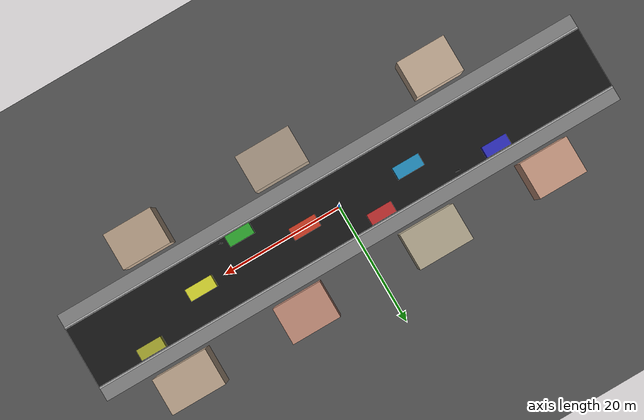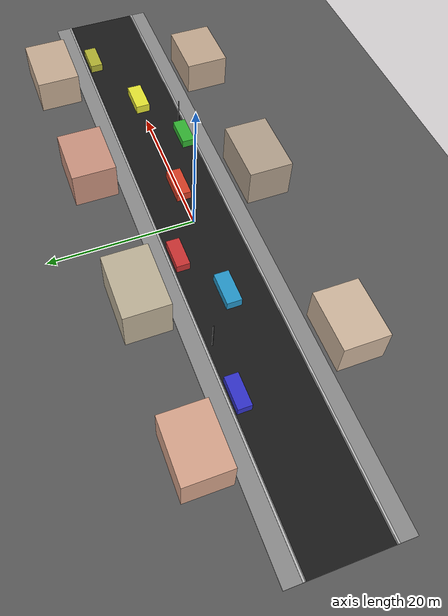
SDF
<?xml version="1.0" ?>
<sdf version="1.9">
  <world name="compact_city_world">
    <physics name="1ms" type="ignored">
      <max_step_size>0.001</max_step_size>
      <real_time_factor>1.0</real_time_factor>
    </physics>

    <plugin filename="gz-sim-physics-system" name="gz::sim::systems::Physics"></plugin>
    <plugin filename="gz-sim-user-commands-system" name="gz::sim::systems::UserCommands"></plugin>
    <plugin filename="gz-sim-scene-broadcaster-system" name="gz::sim::systems::SceneBroadcaster"></plugin>
    <plugin filename="gz-sim-contact-system" name="gz::sim::systems::Contact"></plugin>
    <plugin filename="gz-sim-sensors-system" name="gz::sim::systems::Sensors">
      <render_engine>ogre2</render_engine>
    </plugin>
    <plugin filename="gz-sim-imu-system" name="gz::sim::systems::Imu"></plugin>
    <plugin filename="gz-sim-navsat-system" name="gz::sim::systems::NavSat"></plugin>

    <spherical_coordinates>
      <surface_model>EARTH_WGS84</surface_model>
      <world_frame_orientation>ENU</world_frame_orientation>
      <latitude_deg>47.478950</latitude_deg>
      <longitude_deg>19.057785</longitude_deg>
      <elevation>0</elevation>
      <heading_deg>0</heading_deg>
    </spherical_coordinates>

    <gravity>0 0 -9.8000000000000007</gravity>
    <magnetic_field>5.5644999999999998e-06 2.2875799999999999e-05 -4.2388400000000002e-05</magnetic_field>
    <atmosphere type='adiabatic'/>

    <scene>
      <ambient>0.40 0.40 0.40 1</ambient>
      <background>0.70 0.70 0.70 1</background>
      <shadows>true</shadows>
    </scene>

    <light type="directional" name="sun">
      <cast_shadows>true</cast_shadows>
      <pose>0 0 10 0 0 0</pose>
      <diffuse>0.8 0.8 0.8 1</diffuse>
      <specular>0.2 0.2 0.2 1</specular>
      <attenuation>
        <range>1000</range>
        <constant>0.9</constant>
        <linear>0.01</linear>
        <quadratic>0.001</quadratic>
      </attenuation>
      <direction>-0.5 0.1 -0.9</direction>
    </light>

    <!-- Ground -->
    <model name="ground_plane">
      <static>true</static>
      <link name="ground_link">
        <collision name="collision">
          <geometry>
            <plane>
              <normal>0 0 1</normal>
              <size>120 60</size>
            </plane>
          </geometry>
        </collision>
        <visual name="visual">
          <geometry>
            <plane>
              <normal>0 0 1</normal>
              <size>120 60</size>
            </plane>
          </geometry>
          <material>
            <ambient>0.35 0.35 0.35 1</ambient>
            <diffuse>0.35 0.35 0.35 1</diffuse>
          </material>
        </visual>
      </link>
    </model>

    <!-- Road -->
    <model name="road_main">
      <static>true</static>
      <link name="road_link">
        <collision name="collision">
          <geometry>
            <box><size>90 10 0.05</size></box>
          </geometry>
          <pose>0 0 0.025 0 0 0</pose>
        </collision>
        <visual name="visual">
          <geometry>
            <box><size>90 10 0.05</size></box>
          </geometry>
          <pose>0 0 0.025 0 0 0</pose>
          <material>
            <ambient>0.08 0.08 0.08 1</ambient>
            <diffuse>0.10 0.10 0.10 1</diffuse>
          </material>
        </visual>
      </link>
    </model>

    <!-- Sidewalks -->
    <model name="sidewalk_north">
      <static>true</static>
      <link name="link">
        <collision name="collision"><geometry><box><size>90 2.5 0.12</size></box></geometry><pose>0 6.25 0.06 0 0 0</pose></collision>
        <visual name="visual"><geometry><box><size>90 2.5 0.12</size></box></geometry><pose>0 6.25 0.06 0 0 0</pose><material><ambient>0.55 0.55 0.55 1</ambient><diffuse>0.55 0.55 0.55 1</diffuse></material></visual>
      </link>
    </model>

    <model name="sidewalk_south">
      <static>true</static>
      <link name="link">
        <collision name="collision"><geometry><box><size>90 2.5 0.12</size></box></geometry><pose>0 -6.25 0.06 0 0 0</pose></collision>
        <visual name="visual"><geometry><box><size>90 2.5 0.12</size></box></geometry><pose>0 -6.25 0.06 0 0 0</pose><material><ambient>0.55 0.55 0.55 1</ambient><diffuse>0.55 0.55 0.55 1</diffuse></material></visual>
      </link>
    </model>

    <!-- Curbs -->
    <model name="curb_north">
      <static>true</static>
      <link name="link">
        <collision name="collision"><geometry><box><size>90 0.25 0.18</size></box></geometry><pose>0 5.25 0.09 0 0 0</pose></collision>
        <visual name="visual"><geometry><box><size>90 0.25 0.18</size></box></geometry><pose>0 5.25 0.09 0 0 0</pose><material><ambient>0.75 0.75 0.75 1</ambient><diffuse>0.75 0.75 0.75 1</diffuse></material></visual>
      </link>
    </model>

    <model name="curb_south">
      <static>true</static>
      <link name="link">
        <collision name="collision"><geometry><box><size>90 0.25 0.18</size></box></geometry><pose>0 -5.25 0.09 0 0 0</pose></collision>
        <visual name="visual"><geometry><box><size>90 0.25 0.18</size></box></geometry><pose>0 -5.25 0.09 0 0 0</pose><material><ambient>0.75 0.75 0.75 1</ambient><diffuse>0.75 0.75 0.75 1</diffuse></material></visual>
      </link>
    </model>

    <!-- Houses (simple boxes, low cost) -->
    <model name="house_1">
      <static>true</static>
      <pose>-30 11 0 0 0 0</pose>
      <link name="link">
        <collision name="collision"><geometry><box><size>8 6 5</size></box></geometry><pose>0 0 2.5 0 0 0</pose></collision>
        <visual name="visual"><geometry><box><size>8 6 5</size></box></geometry><pose>0 0 2.5 0 0 0</pose><material><ambient>0.85 0.65 0.55 1</ambient><diffuse>0.85 0.65 0.55 1</diffuse></material></visual>
      </link>
    </model>

    <model name="house_2">
      <static>true</static>
      <pose>-10 11 0 0 0 0</pose>
      <link name="link">
        <collision name="collision"><geometry><box><size>9 6 6</size></box></geometry><pose>0 0 3 0 0 0</pose></collision>
        <visual name="visual"><geometry><box><size>9 6 6</size></box></geometry><pose>0 0 3 0 0 0</pose><material><ambient>0.75 0.70 0.60 1</ambient><diffuse>0.75 0.70 0.60 1</diffuse></material></visual>
      </link>
    </model>

    <model name="house_3">
      <static>true</static>
      <pose>12 11 0 0 0 0</pose>
      <link name="link">
        <collision name="collision"><geometry><box><size>8 6 5.5</size></box></geometry><pose>0 0 2.75 0 0 0</pose></collision>
        <visual name="visual"><geometry><box><size>8 6 5.5</size></box></geometry><pose>0 0 2.75 0 0 0</pose><material><ambient>0.80 0.58 0.50 1</ambient><diffuse>0.80 0.58 0.50 1</diffuse></material></visual>
      </link>
    </model>

    <model name="house_4">
      <static>true</static>
      <pose>32 11 0 0 0 0</pose>
      <link name="link">
        <collision name="collision"><geometry><box><size>9 6 5</size></box></geometry><pose>0 0 2.5 0 0 0</pose></collision>
        <visual name="visual"><geometry><box><size>9 6 5</size></box></geometry><pose>0 0 2.5 0 0 0</pose><material><ambient>0.78 0.68 0.58 1</ambient><diffuse>0.78 0.68 0.58 1</diffuse></material></visual>
      </link>
    </model>

    <model name="house_5">
      <static>true</static>
      <pose>-22 -11 0 0 0 0</pose>
      <link name="link">
        <collision name="collision"><geometry><box><size>8 6 5</size></box></geometry><pose>0 0 2.5 0 0 0</pose></collision>
        <visual name="visual"><geometry><box><size>8 6 5</size></box></geometry><pose>0 0 2.5 0 0 0</pose><material><ambient>0.82 0.72 0.62 1</ambient><diffuse>0.82 0.72 0.62 1</diffuse></material></visual>
      </link>
    </model>

    <model name="house_6">
      <static>true</static>
      <pose>5 -11 0 0 0 0</pose>
      <link name="link">
        <collision name="collision"><geometry><box><size>9 6 5.8</size></box></geometry><pose>0 0 2.9 0 0 0</pose></collision>
        <visual name="visual"><geometry><box><size>9 6 5.8</size></box></geometry><pose>0 0 2.9 0 0 0</pose><material><ambient>0.70 0.63 0.55 1</ambient><diffuse>0.70 0.63 0.55 1</diffuse></material></visual>
      </link>
    </model>

    <model name="house_7">
      <static>true</static>
      <pose>28 -11 0 0 0 0</pose>
      <link name="link">
        <collision name="collision"><geometry><box><size>8 6 5</size></box></geometry><pose>0 0 2.5 0 0 0</pose></collision>
        <visual name="visual"><geometry><box><size>8 6 5</size></box></geometry><pose>0 0 2.5 0 0 0</pose><material><ambient>0.76 0.66 0.56 1</ambient><diffuse>0.76 0.66 0.56 1</diffuse></material></visual>
      </link>
    </model>

    <!-- Lamp posts, very light -->
    <model name="lamp_1">
      <static>true</static>
      <pose>-18 4.3 0 0 0 0</pose>
      <link name="link">
        <collision name="collision"><geometry><cylinder><radius>0.08</radius><length>4.5</length></cylinder></geometry><pose>0 0 2.25 0 0 0</pose></collision>
        <visual name="visual"><geometry><cylinder><radius>0.08</radius><length>4.5</length></cylinder></geometry><pose>0 0 2.25 0 0 0</pose><material><ambient>0.15 0.15 0.15 1</ambient><diffuse>0.15 0.15 0.15 1</diffuse></material></visual>
      </link>
    </model>

    <model name="lamp_2">
      <static>true</static>
      <pose>18 -4.3 0 0 0 0</pose>
      <link name="link">
        <collision name="collision"><geometry><cylinder><radius>0.08</radius><length>4.5</length></cylinder></geometry><pose>0 0 2.25 0 0 0</pose></collision>
        <visual name="visual"><geometry><cylinder><radius>0.08</radius><length>4.5</length></cylinder></geometry><pose>0 0 2.25 0 0 0</pose><material><ambient>0.15 0.15 0.15 1</ambient><diffuse>0.15 0.15 0.15 1</diffuse></material></visual>
      </link>
    </model>

    <!-- Parked cars on the roadside / curb -->
    <model name="parked_car_1">
      <static>true</static>
      <pose>-25 4.0 0.35 0 0 0</pose>
      <link name="body">
        <collision name="collision"><geometry><box><size>4.2 1.8 1.2</size></box></geometry><pose>0 0 0.6 0 0 0</pose></collision>
        <visual name="visual"><geometry><box><size>4.2 1.8 1.2</size></box></geometry><pose>0 0 0.6 0 0 0</pose><material><ambient>0.2 0.2 0.8 1</ambient><diffuse>0.2 0.2 0.8 1</diffuse></material></visual>
      </link>
    </model>

    <model name="parked_car_2">
      <static>true</static>
      <pose>-5 4.0 0.35 0 0 0</pose>
      <link name="body">
        <collision name="collision"><geometry><box><size>4.2 1.8 1.2</size></box></geometry><pose>0 0 0.6 0 0 0</pose></collision>
        <visual name="visual"><geometry><box><size>4.2 1.8 1.2</size></box></geometry><pose>0 0 0.6 0 0 0</pose><material><ambient>0.8 0.2 0.2 1</ambient><diffuse>0.8 0.2 0.2 1</diffuse></material></visual>
      </link>
    </model>

    <model name="parked_car_3">
      <static>true</static>
      <pose>15 -4.0 0.35 0 0 3.14159</pose>
      <link name="body">
        <collision name="collision"><geometry><box><size>4.2 1.8 1.2</size></box></geometry><pose>0 0 0.6 0 0 0</pose></collision>
        <visual name="visual"><geometry><box><size>4.2 1.8 1.2</size></box></geometry><pose>0 0 0.6 0 0 0</pose><material><ambient>0.2 0.7 0.2 1</ambient><diffuse>0.2 0.7 0.2 1</diffuse></material></visual>
      </link>
    </model>

    <model name="parked_car_4">
      <static>true</static>
      <pose>35 4.0 0.35 0 0 0</pose>
      <link name="body">
        <collision name="collision"><geometry><box><size>4.2 1.8 1.2</size></box></geometry><pose>0 0 0.6 0 0 0</pose></collision>
        <visual name="visual"><geometry><box><size>4.2 1.8 1.2</size></box></geometry><pose>0 0 0.6 0 0 0</pose><material><ambient>0.7 0.7 0.2 1</ambient><diffuse>0.7 0.7 0.2 1</diffuse></material></visual>
      </link>
    </model>

    <!-- Cars in the lane: keep them simple and few -->
    <model name="traffic_car_1">
      <static>true</static>
      <pose>-12 0 0.35 0 0 0</pose>
      <link name="body">
        <collision name="collision"><geometry><box><size>4.5 2.0 1.3</size></box></geometry><pose>0 0 0.65 0 0 0</pose></collision>
        <visual name="visual"><geometry><box><size>4.5 2.0 1.3</size></box></geometry><pose>0 0 0.65 0 0 0</pose><material><ambient>0.15 0.6 0.8 1</ambient><diffuse>0.15 0.6 0.8 1</diffuse></material></visual>
      </link>
    </model>

    <model name="traffic_car_2">
      <static>true</static>
      <pose>6 0 0.35 0 0 0</pose>
      <link name="body">
        <collision name="collision"><geometry><box><size>4.5 2.0 1.3</size></box></geometry><pose>0 0 0.65 0 0 0</pose></collision>
        <visual name="visual"><geometry><box><size>4.5 2.0 1.3</size></box></geometry><pose>0 0 0.65 0 0 0</pose><material><ambient>0.85 0.25 0.15 1</ambient><diffuse>0.85 0.25 0.15 1</diffuse></material></visual>
      </link>
    </model>

    <model name="traffic_car_3">
      <static>true</static>
      <pose>24 0 0.35 0 0 0</pose>
      <link name="body">
        <collision name="collision"><geometry><box><size>4.5 2.0 1.3</size></box></geometry><pose>0 0 0.65 0 0 0</pose></collision>
        <visual name="visual"><geometry><box><size>4.5 2.0 1.3</size></box></geometry><pose>0 0 0.65 0 0 0</pose><material><ambient>0.9 0.9 0.2 1</ambient><diffuse>0.9 0.9 0.2 1</diffuse></material></visual>
      </link>
    </model>

    <!-- Optional road markings (lightweight) -->
    <model name="center_line_1">
      <static>true</static>
      <pose>-18 0 0.03 0 0 0</pose>
      <link name="link">
        <collision name="collision"><geometry><box><size>6 0.12 0.01</size></box></geometry></collision>
        <visual name="visual"><geometry><box><size>6 0.12 0.01</size></box></geometry><material><ambient>0.95 0.95 0.2 1</ambient><diffuse>0.95 0.95 0.2 1</diffuse></material></visual>
      </link>
    </model>

    <model name="center_line_2">
      <static>true</static>
      <pose>0 0 0.03 0 0 0</pose>
      <link name="link">
        <collision name="collision"><geometry><box><size>6 0.12 0.01</size></box></geometry></collision>
        <visual name="visual"><geometry><box><size>6 0.12 0.01</size></box></geometry><material><ambient>0.95 0.95 0.2 1</ambient><diffuse>0.95 0.95 0.2 1</diffuse></material></visual>
      </link>
    </model>

    <model name="center_line_3">
      <static>true</static>
      <pose>18 0 0.03 0 0 0</pose>
      <link name="link">
        <collision name="collision"><geometry><box><size>6 0.12 0.01</size></box></geometry></collision>
        <visual name="visual"><geometry><box><size>6 0.12 0.01</size></box></geometry><material><ambient>0.95 0.95 0.2 1</ambient><diffuse>0.95 0.95 0.2 1</diffuse></material></visual>
      </link>
    </model>

  </world>
</sdf>
